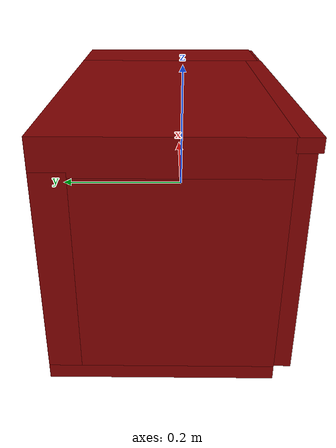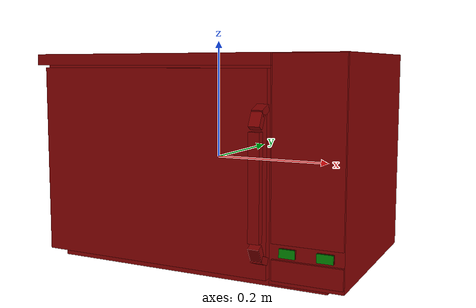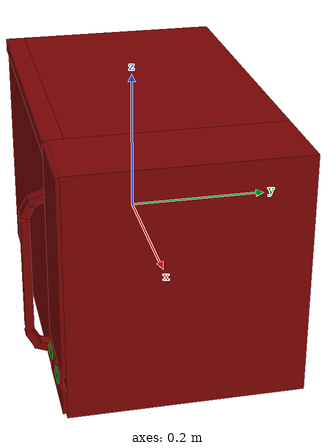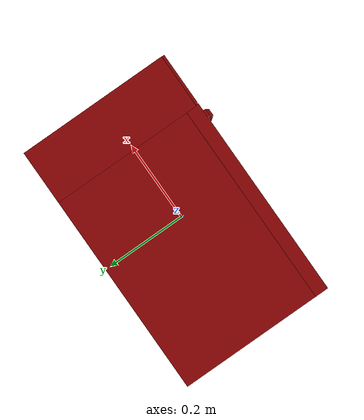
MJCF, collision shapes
<?xml version='1.0' encoding='UTF-8'?>
<mujoco model="model">
  <option timestep="0.002" gravity="0.0 0.0 -9.81"/>
  <compiler angle="radian"/>
  <asset>
    <mesh file="visuals/door.obj" name="door_vis"/>
    <mesh file="visuals/door_Clear.obj" name="door_Clear_vis"/>
    <mesh file="visuals/Body001.obj" name="Body001_vis"/>
    <mesh file="visuals/Button001.obj" name="Button001_vis"/>
    <mesh file="visuals/Button002.obj" name="Button002_vis"/>
    <mesh file="visuals/Disc001.obj" name="Disc001_vis"/>
    <texture file="visuals/T_BC001.png" name="Body001_material" type="2d"/>
    <material name="Body001_material" rgba="1 1 1 1.0" texture="Body001_material" shininess="0.4472135901451111" specular="3"/>
    <texture file="visuals/T_BC001.png" name="door_material" type="2d"/>
    <material name="door_material" rgba="1 1 1 1.0" texture="door_material" shininess="0.3472135901451111" specular="2"/>
    <material name="door_Clear_material" rgba="0.12883205711841583 0.12883205711841583 0.12883205711841583 0.75" shininess="0.4472135901451111" specular="0.3103448502657381"/>
    <texture file="visuals/T_BC001.png" name="Button001_material" type="2d"/>
    <material name="Button001_material" rgba="1 1 1 1.0" texture="Button001_material" shininess="0.4472135901451111" specular="0.3103448502657381"/>
    <texture file="visuals/T_BC001.png" name="Button002_material" type="2d"/>
    <material name="Button002_material" rgba="1 1 1 1.0" texture="Button002_material" shininess="0.4472135901451111" specular="0.3103448502657381"/>
    <texture file="visuals/T_BC001.png" name="Disc001_material" type="2d"/>
    <material name="Disc001_material" rgba="1 1 1 1.0" texture="Disc001_material" shininess="0.4472135901451111" specular="0.81"/>
  </asset>
  <default>
    <default class="visual">
      <geom conaffinity="0" contype="0" group="1" type="mesh"/>
    </default>
    <default class="collision">
      <geom group="0" rgba="0.5 0 0 0.5"/>
    </default>
    <default class="spawn">
      <geom group="0" rgba="1 1 1 0.5" contype="0" conaffinity="0"/>
      <site group="0" rgba="1 1 1 0.5"/>
    </default>
    <default class="region">
      <geom group="1" conaffinity="0" contype="0" rgba="0 1 0 0"/>
    </default>
  </default>
  <worldbody>
    <body>
      <body name="object">
        <geom class="collision" type="cylinder" pos="-0.05763543024659157 0.011082741431891918 -0.13688820600509644" size="0.11278744786977768 0.001541092642582953" quat="1.0 0.0 0.0 0.0" name="tray" rgba="0 1 0 0.5"/>
        <geom class="collision" type="box" pos="0.1879269778728485 -0.15044355392456055 -0.11381081491708755" size="0.012450378388166428 0.0012805156875401735 0.006848666351288557" quat="1.0 0.0 0.0 0.0" name="start_button" rgba="0.0 0.5 0 0.5"/>
        <geom class="collision" type="box" pos="0.24583984911441803 -0.15044355392456055 -0.11374867707490921" size="0.012520801275968552 0.0012805156875401735 0.006848660763353109" quat="1.0 0.0 0.0 0.0" name="stop_button" rgba="0.0 0.5 0 0.5"/>
        <geom mesh="Body001_vis" type="mesh" solimp="0.998 0.998 0.001" solref="0.001 1" friction="0.95 0.3 0.1" class="visual" material="Body001_material"/>
        <geom class="collision" type="box" pos="-0.05650288984179497 0.02996852621436119 -0.15506833791732788" size="0.21579544246196747 0.1495121568441391 0.010290523990988731" quat="1.0 0.0 0.0 0.0"/>
        <geom class="collision" type="box" pos="-0.2641928195953369 0.029968520626425743 -0.007425020448863506" size="0.008105562999844551 0.14951317012310028 0.13735322654247284" quat="1.0 0.0 0.0 0.0"/>
        <geom class="collision" type="box" pos="-0.056502923369407654 0.1575947254896164 -0.0047463783994317055" size="0.2157973200082779 0.021886076778173447 0.1400318741798401" quat="1.0 0.0 0.0 0.0"/>
        <geom class="collision" type="box" pos="-0.05650293827056885 -0.13249026238918304 0.16813543438911438" size="0.21579718589782715 0.015356693416833878 0.009261691942811012" quat="1.0 0.0 0.0 0.0"/>
        <geom class="collision" type="box" pos="0.21454721689224243 0.018696513026952744 0.006019291467964649" size="0.0577511228621006 0.16078417003154755 0.17137852311134338" quat="1.0 0.0 0.0 0.0"/>
        <geom class="collision" type="box" pos="-0.056502968072891235 0.029968557879328728 0.15277664363384247" size="0.21579691767692566 0.1495129019021988 0.024620603770017624" quat="1.0 0.0 0.0 0.0"/>
        <geom class="collision" type="box" pos="0.14710645377635956 0.029968561604619026 -0.0074251387268304825" size="0.011839174665510654 0.14951282739639282 0.13735300302505493" quat="1.0 0.0 0.0 0.0"/>
        <geom class="collision" type="box" pos="-0.0024563376791775227 -0.10042570531368256 -0.1655990183353424" size="0.24282032251358032 0.017416086047887802 0.011798009276390076" quat="1.0 0.0 0.0 0.0"/>
        <geom class="collision" type="box" pos="-0.0024563376791775227 0.12577728927135468 -0.1655990183353424" size="0.24282032251358032 0.017416086047887802 0.011798009276390076" quat="1.0 0.0 0.0 0.0"/>
        <geom class="collision" type="box" pos="0.2167968451976776 -0.14497677981853485 0.0372631810605526" size="0.055501341819763184 0.002914340700954199 0.13899099826812744" quat="1.0 0.0 0.0 0.0"/>
        <geom class="collision" type="box" pos="0.2169858068227768 -0.14497677981853485 -0.14205771684646606" size="0.05531252548098564 0.002820748370140791 0.015988659113645554" quat="1.0 0.0 0.0 0.0"/>
        <body name="door">
          <joint axis="0.0 0.0 1.0" pos="-0.2581709623336792 -0.13461221754550934 -0.0004099905490875244" limited="true" name="microjoint" range="-1.5707963267948966 0.0" type="hinge" damping="1" frictionloss="1" armature=".01" stiffness="0.05"/>
          <geom mesh="door_vis" type="mesh" solimp="0.998 0.998 0.001" solref="0.001 1" friction="0.95 0.3 0.1" class="visual" material="door_material"/>
          <geom class="collision" type="box" pos="-0.056987326592206955 -0.1371203511953354 -0.00033478564000688493" size="0.15617835521697998 0.006391293369233608 0.09085484594106674" quat="1.0 0.0 0.0 0.0"/>
          <geom class="collision" type="box" pos="0.14707040786743164 -0.15629811584949493 0.09394919872283936" size="0.008900480344891548 0.005757467821240425 0.011349364183843136" quat="0.823179304599762 -0.5677815079689026 -0.0 0.0"/>
          <geom class="collision" type="box" pos="0.14707040786743164 -0.15629811584949493 -0.12641854584217072" size="0.008900480344891548 0.005757467821240425 0.01134936697781086" quat="0.823179304599762 0.5677815079689026 0.0 0.0"/>
          <geom class="collision" type="box" pos="0.14707040786743164 -0.1691921353340149 0.08023849129676819" size="0.008900480344891548 0.005757467821240425 0.01168433390557766" quat="0.969722330570221 -0.24421025812625885 -0.0 0.0"/>
          <geom class="collision" type="box" pos="0.14707040786743164 -0.1691921204328537 -0.11270785331726074" size="0.008900480344891548 0.005757467821240425 0.01168433390557766" quat="0.969722330570221 0.24421025812625885 0.0 0.0"/>
          <geom class="collision" type="box" pos="0.14707040786743164 -0.17343617975711823 -0.01623465120792389" size="0.008900480344891548 0.005757467821240425 0.08104900270700455" quat="1.0 0.0 0.0 0.0" name="door_handle_main"/>
          <geom class="collision" type="box" pos="-0.05099177360534668 -0.13533228635787964 -0.002524374285712838" size="0.2045060247182846 0.011613438837230206 0.157330721616745" quat="1.0 0.0 0.0 0.0" name="door_main"/>
          <body name="door_Clear">
            <geom mesh="door_Clear_vis" type="mesh" solimp="0.998 0.998 0.001" solref="0.001 1" friction="0.95 0.3 0.1" class="visual" material="door_Clear_material"/>
            <geom class="collision" type="box" pos="-0.056987326592206955 -0.1371203511953354 -0.00033478564000688493" size="0.15617835521697998 0.006391293369233608 0.09085484594106674" quat="1.0 0.0 0.0 0.0"/>
          </body>
        </body>
        <body name="Button001">
          <joint axis="0.0 1.0 0.0" pos="0.19762928783893585 -0.1487465351819992 -0.11371246725320816" limited="true" name="Button001_joint" range="0.0 0.0034999999999999996" type="slide" damping="1" frictionloss="1" armature=".01" stiffness="0.05"/>
          <geom mesh="Button001_vis" type="mesh" solimp="0.998 0.998 0.001" solref="0.001 1" friction="0.95 0.3 0.1" class="visual" material="Button001_material"/>
          <geom class="collision" type="box" pos="0.1879269778728485 -0.14721527695655823 -0.11381081491708755" size="0.012450353242456913 0.0012805156875401735 0.006848664954304695" quat="1.0 0.0 0.0 0.0"/>
        </body>
        <body name="Button002">
          <joint axis="0.0 1.0 0.0" pos="0.23318633437156677 -0.1487465351819992 -0.11381849646568298" limited="true" name="Button002_joint" range="0.0 0.0034999999999999996" type="slide" damping="1" frictionloss="1" armature=".01" stiffness="0.05"/>
          <geom mesh="Button002_vis" type="mesh" solimp="0.998 0.998 0.001" solref="0.001 1" friction="0.95 0.3 0.1" class="visual" material="Button002_material"/>
          <geom class="collision" type="box" pos="0.24583984911441803 -0.14721527695655823 -0.11374867707490921" size="0.012520814314484596 0.0012805156875401735 0.006848662160336971" quat="1.0 0.0 0.0 0.0"/>
        </body>
        <body name="Disc001">
          <joint axis="0.0 0.0 1.0" pos="-0.057635433971881866 0.011082734912633896 -0.14125919342041016" limited="false" name="Disc001_joint" range="0 360" type="hinge" damping="1" frictionloss="1" armature=".01" stiffness="0.05"/>
          <geom mesh="Disc001_vis" type="mesh" solimp="0.998 0.998 0.001" solref="0.001 1" friction="0.95 0.3 0.1" class="visual" material="Disc001_material"/>
          <geom class="collision" type="cylinder" pos="-0.05763543024659157 0.011082741431891918 -0.14167316257953644" size="0.11278744786977768 0.0018401468405500054" quat="1.0 0.0 0.0 0.0"/>
        </body>
        <geom class="region" name="reg_int" type="box" pos="-0.0602644607424736 0.009184874594211578 -0.005754835903644562" size="0.19109900838136673 0.12120453065633774 0.12882325595617294"/>
        <geom class="region" name="reg_main" type="box" pos="0.0 0.015749968588352203 7.450580596923828e-09" size="0.27329833602905274 0.1647307107448578 0.17839704251289368"/>
      <geom class="region" name="reg_tray" type="cylinder" pos="-0.05763543024659157 0.011082741431891918 -0.00613934665499255" size="0.11278744786977768 0.12820776670752093"/></body>
    </body>
  </worldbody>
  <actuator>
    <motor name="microjoint_actuator" joint="microjoint" gear="10"/>
    <motor name="Button001_joint_actuator" joint="Button001_joint" gear="0.5"/>
    <motor name="Button002_joint_actuator" joint="Button002_joint" gear="0.5"/>
    <motor name="Disc001_joint_actuator" joint="Disc001_joint" gear="10"/>
  </actuator>
</mujoco>
